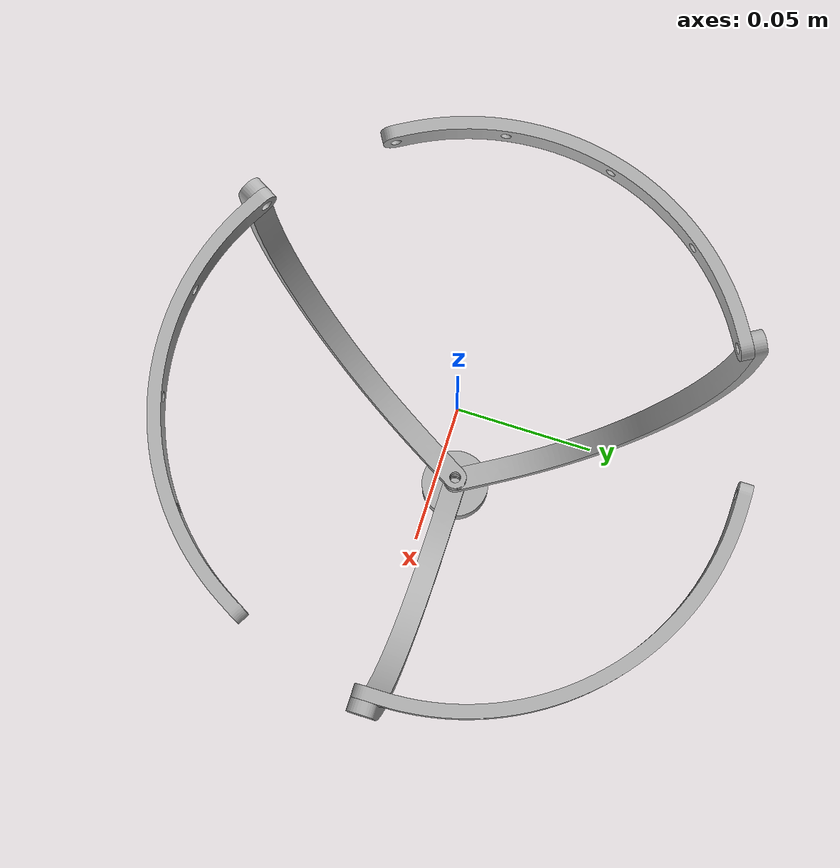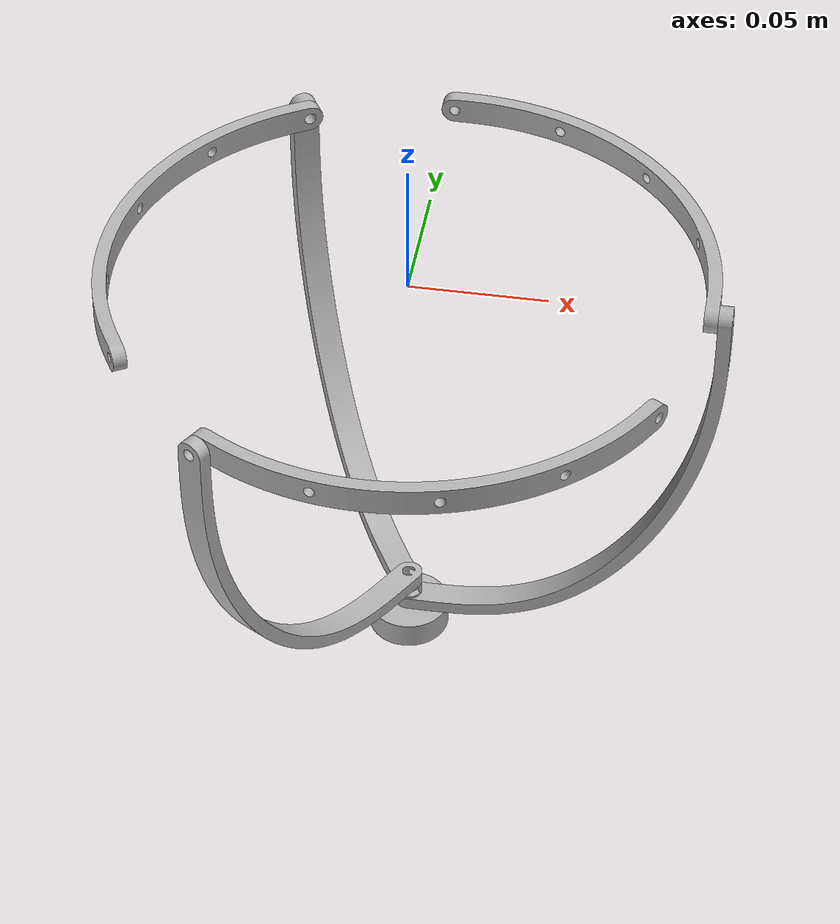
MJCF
<mujoco model="parallel_manipulator">
  <compiler angle="radian" meshdir="meshes/"/>
  <asset>
    <mesh name="base_link" file="base_link.stl" scale="0.001 0.001 0.001"/>
    <mesh name="base11" file="base11.stl" scale="0.001 0.001 0.001"/>
    <mesh name="base21" file="base21.stl" scale="0.001 0.001 0.001"/>
    <mesh name="base31" file="base31.stl" scale="0.001 0.001 0.001"/>
    <mesh name="base_top1" file="base_top1.stl" scale="0.001 0.001 0.001"/>
    <mesh name="base_top21" file="base_top21.stl" scale="0.001 0.001 0.001"/>
    <mesh name="base_top31" file="base_top31.stl" scale="0.001 0.001 0.001"/>
  </asset>
  <worldbody>
    <body name="base_link">
      <inertial pos="0 0 -0.16" quat="0.5 0.5 -0.5 0.5" mass="0.0554884" diaginertia="6.24244e-06 3.58362e-06 3.58362e-06"/>
      <geom type="mesh" contype="0" conaffinity="0" group="1" density="0" rgba="0.7 0.7 0.7 1" mesh="base_link"/>
      <geom type="mesh" rgba="0.7 0.7 0.7 1" mesh="base_link"/>
      <body name="base11" pos="0 0 -0.155">
        <inertial pos="0.0777064 3.03227e-07 0.0602439" quat="0.676664 0.205281 0.205295 0.676638" mass="0.0867435" diaginertia="0.00031411 0.000298651 1.69147e-05"/>
        <geom pos="0 0 0.155" type="mesh" contype="0" conaffinity="0" group="1" density="0" rgba="0.7 0.7 0.7 1" mesh="base11"/>
        <geom pos="0 0 0.155" type="mesh" rgba="0.7 0.7 0.7 1" mesh="base11"/>
        <body name="base21" pos="0 0 0.005">
          <inertial pos="-0.0386339 0.0669153 0.0579092" quat="0.921478 -0.289654 -0.0776235 0.24689" mass="0.0851452" diaginertia="0.000295252 0.000280476 1.6206e-05"/>
          <joint name="Revolute_27" pos="0 0 0" axis="0 0 -1"/>
          <geom pos="0 0 0.15" type="mesh" contype="0" conaffinity="0" group="1" density="0" rgba="0.7 0.7 0.7 1" mesh="base21"/>
          <geom pos="0 0 0.15" type="mesh" rgba="0.7 0.7 0.7 1" mesh="base21"/>
          <body name="base31" pos="0 0 0.005">
            <inertial pos="-0.0384104 -0.0665294 0.0555821" quat="0.91838 0.299303 -0.0801863 -0.2461" mass="0.0835471" diaginertia="0.000277358 0.000263256 1.55044e-05"/>
            <joint name="Revolute_28" pos="0 0 0" axis="0 0 -1"/>
            <geom pos="0 0 0.145" type="mesh" contype="0" conaffinity="0" group="1" density="0" rgba="0.7 0.7 0.7 1" mesh="base31"/>
            <geom pos="0 0 0.145" type="mesh" rgba="0.7 0.7 0.7 1" mesh="base31"/>
            <body name="base_top31" pos="-0.055036 -0.095242 0.145049">
              <inertial pos="0.0803558 0.00131736 -4.9457e-05" quat="-0.0927831 0.70098 0.0928438 0.700999" mass="0.0676052" diaginertia="0.000160728 0.000153271 8.6082e-06"/>
              <joint name="Revolute_34" pos="0 0 0" axis="-0.5 -0.866025 0"/>
              <geom pos="0.055036 0.095242 -4.9e-05" type="mesh" contype="0" conaffinity="0" group="1" density="0" rgba="0.7 0.7 0.7 1" mesh="base_top31"/>
              <geom pos="0.055036 0.095242 -4.9e-05" type="mesh" rgba="0.7 0.7 0.7 1" mesh="base_top31"/>
            </body>
          </body>
          <body name="base_top21" pos="-0.054964 0.095284 0.150049">
            <inertial pos="-0.039037 -0.0702493 -4.9457e-05" quat="0.560691 0.430895 -0.560644 0.430852" mass="0.0676052" diaginertia="0.000160728 0.000153271 8.6082e-06"/>
            <joint name="Revolute_33" pos="0 0 0" axis="-0.5 0.866025 0"/>
            <geom pos="0.054964 -0.095284 -4.9e-05" type="mesh" contype="0" conaffinity="0" group="1" density="0" rgba="0.7 0.7 0.7 1" mesh="base_top21"/>
            <geom pos="0.054964 -0.095284 -4.9e-05" type="mesh" rgba="0.7 0.7 0.7 1" mesh="base_top21"/>
          </body>
        </body>
        <body name="base_top1" pos="0.11 -4.2e-05 0.155049">
          <inertial pos="-0.0413188 0.0689319 -4.9457e-05" quat="0.270085 0.653474 -0.270147 0.653488" mass="0.0676052" diaginertia="0.000160728 0.000153271 8.6082e-06"/>
          <joint name="Revolute_32" pos="0 0 0" axis="1 0 0"/>
          <geom pos="-0.11 4.2e-05 -4.9e-05" type="mesh" contype="0" conaffinity="0" group="1" density="0" rgba="0.7 0.7 0.7 1" mesh="base_top1"/>
          <geom pos="-0.11 4.2e-05 -4.9e-05" type="mesh" rgba="0.7 0.7 0.7 1" mesh="base_top1"/>
        </body>
      </body>
    </body>
  </worldbody>
</mujoco>
